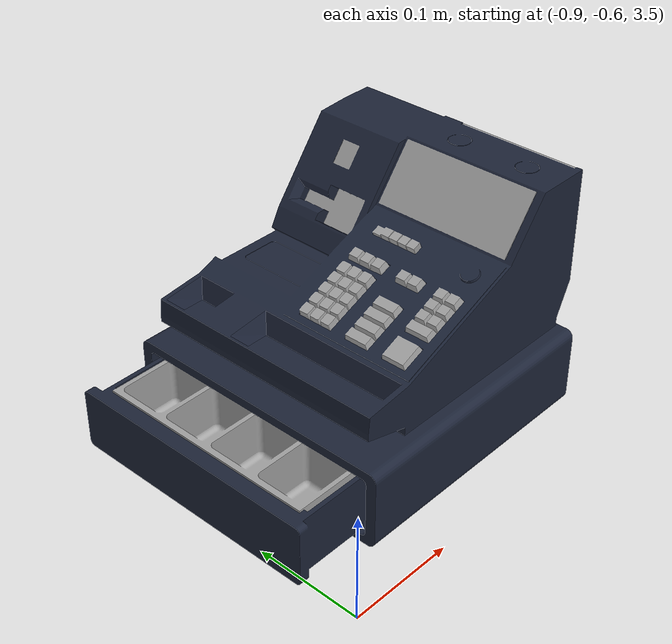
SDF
<?xml version="1.0" ?>
<sdf version="1.5">
  <model name="arena_cash_register">
    <pose>0 0 0 0 0 0</pose>
    <static>true</static>
    <link name="body">
      <visual name="visual">
        <geometry>
          <mesh><uri>model://arena_cash_register/media/arena_cash_register.dae</uri></mesh>
        </geometry>
      </visual>
      <collision name="collision">
        <geometry>
          <mesh><uri>model://arena_cash_register/media/arena_cash_register.dae</uri></mesh>
        </geometry>
      </collision>
    </link>
  </model>
</sdf>
